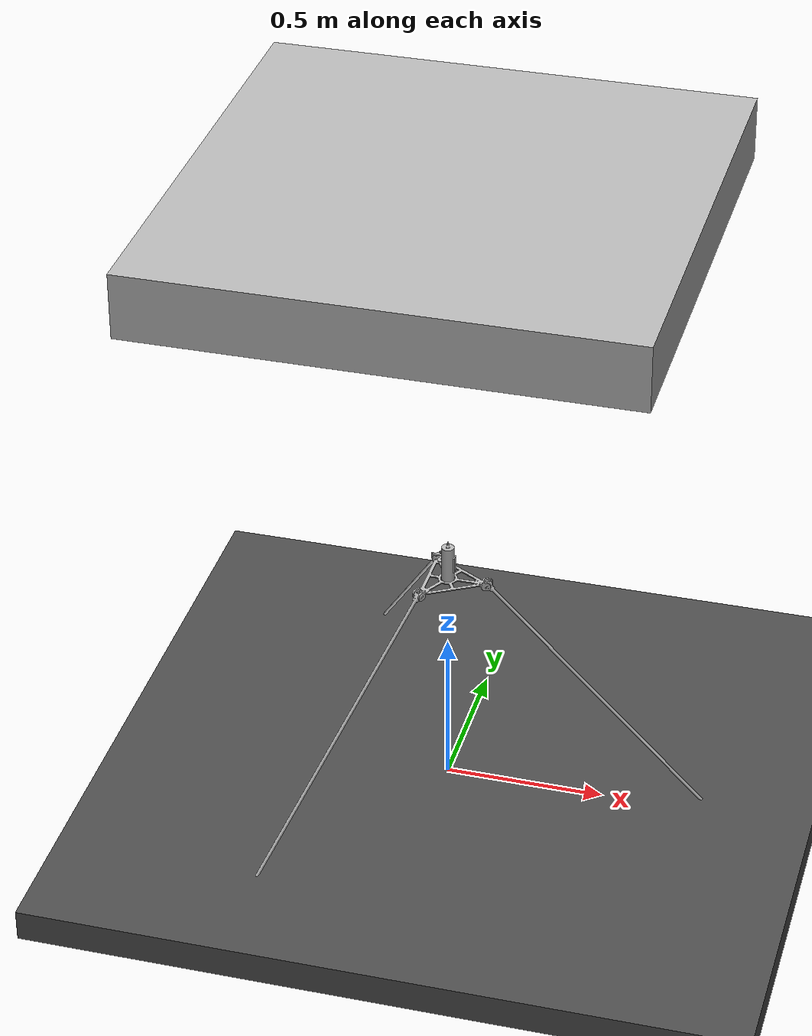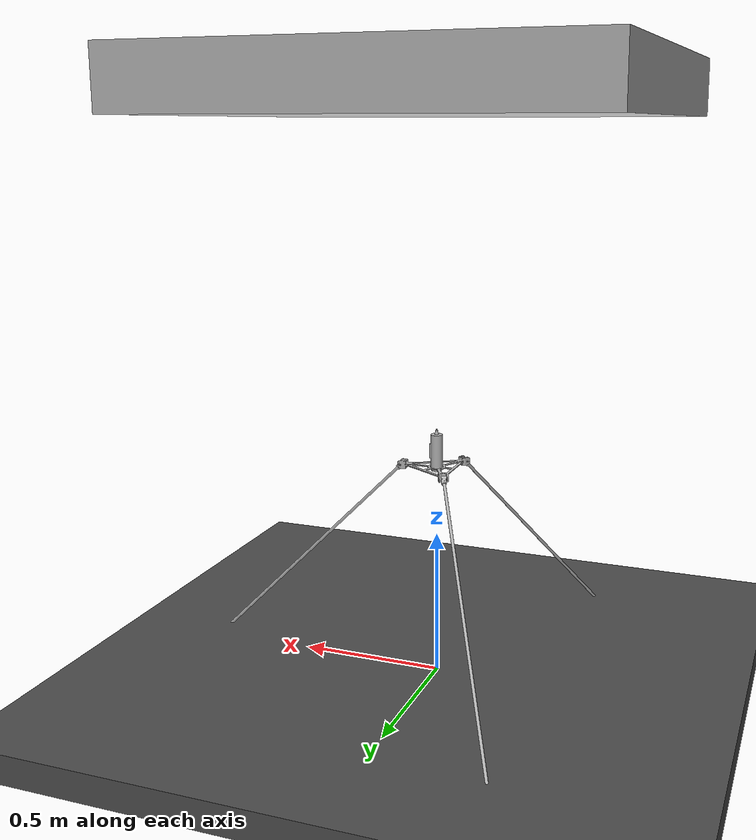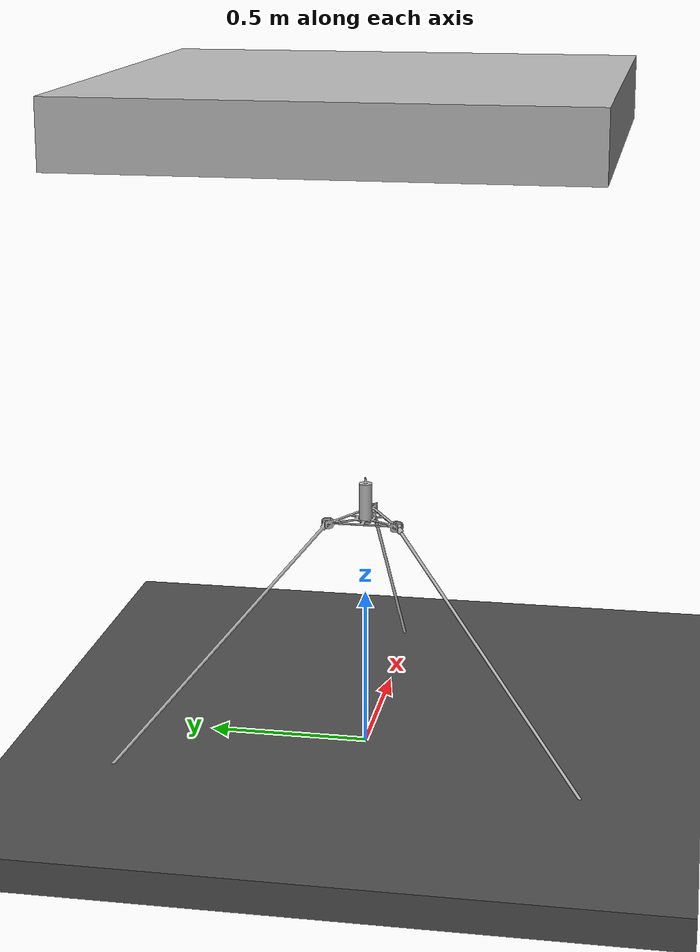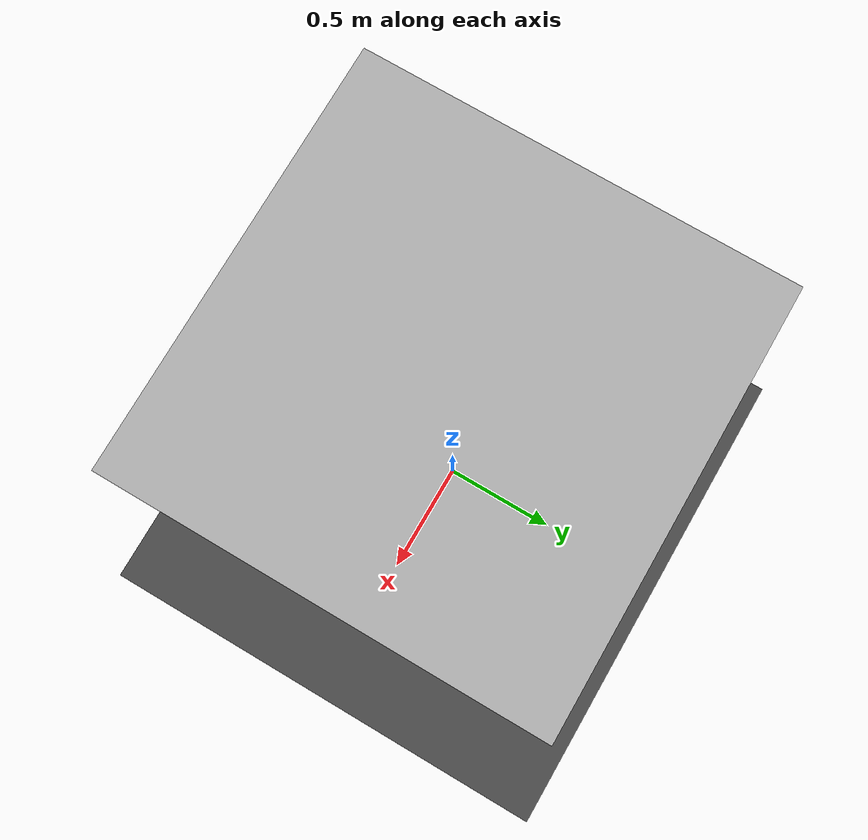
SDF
<sdf version='1.7'>
  <world name='ls2n_fpr_world'>
    <light name='sun' type='directional'>
      <cast_shadows>1</cast_shadows>
      <pose>0 0 10 0 -0 0</pose>
      <diffuse>0.8 0.8 0.8 1</diffuse>
      <specular>0.2 0.2 0.2 1</specular>
      <attenuation>
        <range>1000</range>
        <constant>0.9</constant>
        <linear>0.01</linear>
        <quadratic>0.001</quadratic>
      </attenuation>
      <direction>-0.5 0.1 -0.9</direction>
    </light>
    <model name='ground_plane'>
      <static>1</static>
      <link name='link'>
        <collision name='collision'>
          <geometry>
            <plane>
              <normal>0 0 1</normal>
              <size>100 100</size>
            </plane>
          </geometry>
          <surface>
            <friction>
              <ode>
                <mu>100</mu>
                <mu2>50</mu2>
              </ode>
            </friction>
          </surface>
        </collision>
        <visual name='visual'>
          <cast_shadows>0</cast_shadows>
          <geometry>
            <plane>
              <normal>0 0 1</normal>
              <size>100 100</size>
            </plane>
          </geometry>
          <material>
            <script>
              <uri>file://media/materials/scripts/gazebo.material</uri>
              <name>Gazebo/Grey</name>
            </script>
          </material>
        </visual>
      </link>
    </model>
    <model name='asphalt_plane'>
      <static>1</static>
      <link name='link'>
        <collision name='collision'>
          <geometry>
            <box>
              <size>20 20 0.1</size>
            </box>
          </geometry>
        </collision>
        <visual name='visual'>
          <cast_shadows>0</cast_shadows>
          <geometry>
            <box>
              <size>20 20 0.1</size>
            </box>
          </geometry>
          <material>
            <script>
              <uri>model://asphalt_plane/materials/scripts</uri>
              <uri>model://asphalt_plane/materials/textures</uri>
              <name>vrc/asphalt</name>
            </script>
          </material>
        </visual>
      </link>
    </model>
    <model name='interaction_wall'>
      <static>1</static>
      <link name='link'>
        <pose>0 0 2 0 0 0</pose>
        <collision name='wall_collision'>
          <geometry>
            <box>
              <size>1.5 1.5 0.2</size>
            </box>
          </geometry>
        </collision>
        <visual name='visual'>
          <cast_shadows>0</cast_shadows>
          <geometry>
            <box>
              <size>1.5 1.5 0.2</size>
            </box>
          </geometry>
          <material>Gazebo/PaintedWall</material>
        </visual>
      </link>
    </model>
    <physics name='default_physics' default='0' type='ode'>
      <ode>
        <solver>
          <type>quick</type>
          <iters>10</iters>
          <sor>1.3</sor>
          <use_dynamic_moi_rescaling>0</use_dynamic_moi_rescaling>
        </solver>
        <constraints>
          <cfm>0</cfm>
          <erp>0.2</erp>
          <contact_max_correcting_vel>100</contact_max_correcting_vel>
          <contact_surface_layer>0.001</contact_surface_layer>
        </constraints>
      </ode>
      <max_step_size>0.004</max_step_size>
      <real_time_factor>1</real_time_factor>
      <real_time_update_rate>250</real_time_update_rate>
    </physics>
    <gravity>0 0 -9.8066</gravity>
    <magnetic_field>6e-06 2.3e-05 -4.2e-05</magnetic_field>
    <atmosphere type='adiabatic'/>
    <scene>
      <ambient>0.4 0.4 0.4 1</ambient>
      <background>0.7 0.7 0.7 1</background>
      <shadows>1</shadows>
    </scene>
    <include>
        <uri>model://fpr_interaction</uri>
    </include>
  </world>
</sdf>

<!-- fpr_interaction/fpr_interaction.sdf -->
<sdf version='1.7'>
  <model name='fpr'>
    <link name="platform">
        <pose>0 0 0.7375123727775691 0 0 0</pose>
        <inertial>
            <pose>0 0 0 0 -0 0</pose>
            <mass>0.215</mass>
            <inertia>
              <ixx>5.427e-4</ixx>
              <ixy>0</ixy>
              <ixz>0</ixz>
              <iyy>5.427e-4</iyy>
              <iyz>0</iyz>
              <izz>0.001</izz>
            </inertia>
        </inertial>
        <visual name="platform_visual">
            <pose>0 0 0 0 -0 0</pose>
            <geometry>
                <mesh>
                    <scale>0.001 0.001 0.001</scale>
                    <uri>model://fpr_interaction/meshes/platform.stl</uri>
                </mesh>
            </geometry>
        </visual>
        <collision name='platform_inertia_collision'>
            <pose>0 0 0 0 0 0</pose>
            <geometry>
                <mesh>
                    <scale>0.001 0.001 0.001</scale>
                    <uri>model://fpr_interaction/meshes/platform.stl</uri>
                </mesh>
            </geometry>
        </collision>
        <visual name="tool_visual">
            <pose>0 0 0 0 0 0</pose>
            <geometry>
                <mesh>
                    <scale>0.001 0.001 0.001</scale>
                    <uri>model://fpr_interaction/meshes/tool.stl</uri>
                </mesh>
            </geometry>
        </visual>
        <collision name='tool_inertia_collision'>
            <pose>0 0 0.027 0 0 0</pose>
            <geometry>
                <cylinder>
                    <radius>0.0022</radius>
                    <length>0.02</length>
                </cylinder>
            </geometry>
        </collision>
        <collision name='tool_inertia_collision_2'>
            <pose>0 0 0.05 0 0 0</pose>
            <geometry>
                <cylinder>
                    <radius>0.02</radius>
                    <length>0.127</length>
                </cylinder>
            </geometry>
        </collision>
        <sensor name='fpr_contact' type='contact'>
            <update_rate>100.0</update_rate>
            <always_on>1</always_on>
            <contact>
                <collision>tool_inertia_collision</collision>
                <topic>/fpr_contact</topic>
            </contact>
            <plugin name='fpr_contact_sensor' filename='libfpr_contact_sensor.so'/>
            <plugin name="gazebo_ros_bumper" filename="libgazebo_ros_bumper.so">
                <ros>
                    <argument>bumper_states:=fpr_contact_gz</argument>
                </ros>
                <frameName>world</frameName>
            </plugin>
        </sensor>
        <gravity>1</gravity>
    </link>
    <link name="leg1">
        <pose>0.48408892449920654 0 0.38042344827836255 0 0.7853981633974483 0</pose>
        <inertial>
            <pose>0.094 0 0 0 -0 0</pose>
            <mass>0.073</mass>
            <inertia>
              <ixx>1.5707e-6</ixx>
              <ixy>0</ixy>
              <ixz>0</ixz>
              <iyy>0.035</iyy>
              <iyz>0</iyz>
              <izz>0.035</izz>
            </inertia>
        </inertial>
        <visual name="leg1_visual">
            <pose>0 0 0 0 -0 0</pose>
            <geometry>
                <mesh>
                    <scale>0.001 0.001 0.001</scale>
                    <uri>model://fpr_interaction/meshes/leg.stl</uri>
                </mesh>
            </geometry>
        </visual>
        <collision name='leg1_inertia_collision'>
            <pose>0 0 0 0 1.570796325 0</pose>
            <geometry>
                <cylinder>
                    <radius>0.005</radius>
                    <length>1.0</length>
                </cylinder>
            </geometry>
        </collision>
        <gravity>1</gravity>
    </link>
    <link name="leg2">
        <pose>-0.24204446224960316 0.419233306307 0.38042344827836255 0 0.7853981633974483 2.0943951023931953</pose>
        <inertial>
            <pose>0.094 0 0 0 -0 0</pose>
            <mass>0.073</mass>
            <inertia>
              <ixx>1.5707e-6</ixx>
              <ixy>0</ixy>
              <ixz>0</ixz>
              <iyy>0.035</iyy>
              <iyz>0</iyz>
              <izz>0.035</izz>
            </inertia>
        </inertial>
        <visual name="leg2_visual">
            <pose>0 0 0 0 -0 0</pose>
            <geometry>
                <mesh>
                    <scale>0.001 0.001 0.001</scale>
                    <uri>model://fpr_interaction/meshes/leg.stl</uri>
                </mesh>
            </geometry>
        </visual>
        <collision name='leg2_inertia_collision'>
            <pose>0 0 0 0 1.570796325 0</pose>
            <geometry>
                <cylinder>
                    <radius>0.005</radius>
                    <length>1.0</length>
                </cylinder>
            </geometry>
        </collision>
        <gravity>1</gravity>
    </link>
    <link name="leg3">
        <pose>-0.24204446224960316 -0.419233306307 0.38042344827836255 0 0.7853981633974483 -2.0943951023931953</pose>
        <inertial>
            <pose>0.094 0 0 0 -0 0</pose>
            <mass>0.073</mass>
            <inertia>
              <ixx>1.5707e-6</ixx>
              <ixy>0</ixy>
              <ixz>0</ixz>
              <iyy>0.035</iyy>
              <iyz>0</iyz>
              <izz>0.035</izz>
            </inertia>
        </inertial>
        <visual name="leg3_visual">
            <pose>0 0 0 0 -0 0</pose>
            <geometry>
                <mesh>
                    <scale>0.001 0.001 0.001</scale>
                    <uri>model://fpr_interaction/meshes/leg.stl</uri>
                </mesh>
            </geometry>
        </visual>
        <collision name='leg3_inertia_collision'>
            <pose>0 0 0 0 1.570796325 0</pose>
            <geometry>
                <cylinder>
                    <radius>0.005</radius>
                    <length>1.0</length>
                </cylinder>
            </geometry>
        </collision>
        <gravity>1</gravity>
    </link>
    <joint name="revolute_leg_1" type="revolute">
        <child>platform</child>
        <parent>leg1</parent>
        <pose>0.127 0 0</pose>
        <axis>
            <xyz>0 1 0</xyz>
        </axis>
    </joint>
    <joint name="revolute_leg_2" type="revolute">
        <child>platform</child>
        <parent>leg2</parent>
        <pose>-0.06349999999999997 0.10998522628062372 0</pose>
        <axis>
            <xyz>0.8660254037844387 0.4999999999999998 0</xyz>
        </axis>
    </joint>
    <joint name="revolute_leg_3" type="revolute">
        <child>platform</child>
        <parent>leg3</parent>
        <pose>-0.06349999999999997 -0.10998522628062372 0</pose>
        <axis>
            <xyz>0.8660254037844387 -0.4999999999999998 0</xyz>
        </axis>
    </joint>
    <plugin name="gazebo_ros_p3d" filename="libgazebo_ros_p3d.so">
        <ros>
          <namespace>FPR/Mocap</namespace>
        </ros>
        <body_name>platform</body_name>
        <update_rate>100</update_rate>
        <frame_name>world</frame_name>
    </plugin>
    <plugin name='fpr_init' filename='libfpr_init.so'/>
  </model>
</sdf>
